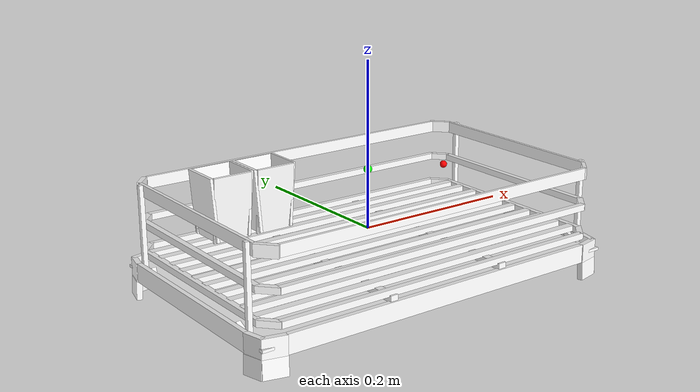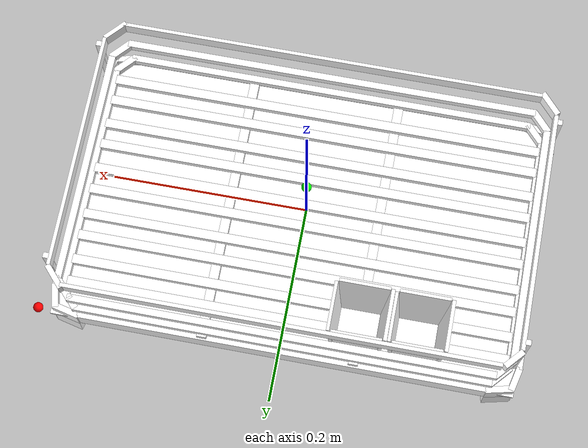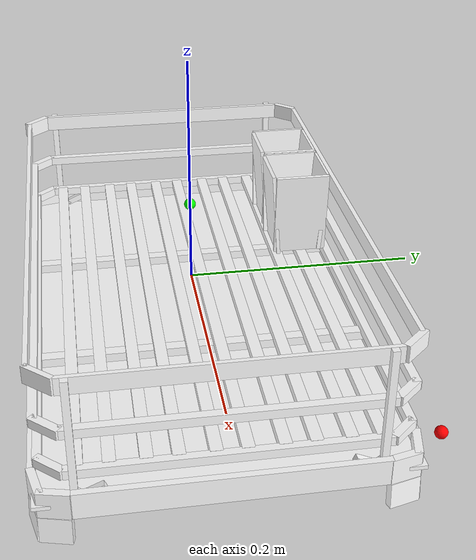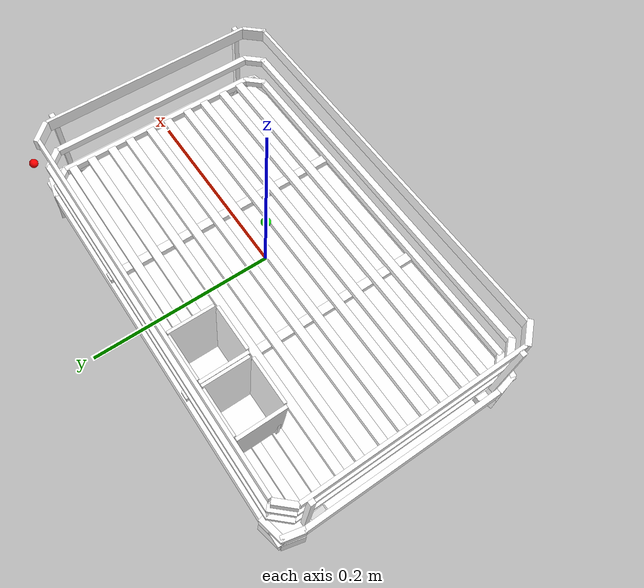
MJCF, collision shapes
<?xml version='1.0' encoding='utf-8'?>
<mujoco model="model">
  <option timestep="0.002" gravity="0.0 0.0 -9.81" />
  <compiler angle="radian" />
  <asset>
    <mesh file="visual/DishRack001.obj" name="DishRack001_vis" />
    <texture file="visual/T_BC001.png" name="DishRack001_material" type="2d" />
    <material name="DishRack001_material" rgba="1 1 1 1.0" texture="DishRack001_material" shininess="0.0" specular="0.3103448502657381" />
  </asset>
  <default>
    <default class="visual">
      <geom conaffinity="0" contype="0" group="1" type="mesh" />
    </default>
    <default class="collision">
      <geom group="0" rgba="1 1 1 0.25" density="1.0" solref="0.004 1" solimp="0.998 0.998 0.001" />
    </default>
    <default class="spawn">
      <geom group="0" rgba="1 1 1 0.5" contype="0" conaffinity="0" />
      <site group="0" rgba="1 1 1 0.5" />
    </default>
    <default class="region">
      <geom group="1" conaffinity="0" contype="0" rgba="0 1 0 0" mass="0" />
    </default>
  </default>
  <worldbody>
    <body>
      <body name="object">
        <geom mesh="DishRack001_vis" type="mesh" solimp="0.998 0.998 0.001" solref="0.001 1" friction="0.95 0.3 0.1" class="visual" material="DishRack001_material" />
        <geom type="box" pos="0.00078065 0.00002598 -0.03666005" size="0.23860862851142883 0.14481741189956665 0.0016388616058975458" quat="1.0 0.0 0.0 0.0" class="collision" />
        <geom type="box" pos="0.00036155 -0.14414408 -0.03586867" size="0.20973120629787445 0.0028738128021359444 0.011258003301918507" quat="1.0 0.0 0.0 0.0" class="collision" />
        <geom type="box" pos="-0.22248497 -0.14168655 -0.03586867" size="0.014151226729154587 0.003268755506724119 0.011258003301918507" quat="0.9936599135398865 0.0 -0.0 -0.11242754757404327" class="collision" />
        <geom type="box" pos="-0.23680636 -0.12837830 -0.03586867" size="0.012441178783774376 0.003268755739554763 0.011258003301918507" quat="0.7828682065010071 0.0 -0.0 -0.622187614440918" class="collision" />
        <geom type="box" pos="-0.23789424 -0.12863595 -0.05816778" size="0.012441177852451801 0.003268755506724119 0.011258004233241081" quat="0.7869249582290649 -0.02062370628118515 0.011115825735032558 -0.6166037917137146" class="collision" />
        <geom type="box" pos="-0.22260144 -0.14219261 -0.05815336" size="0.014151226729154587 0.003268755506724119 0.011258002370595932" quat="0.9932156205177307 -0.02800566516816616 0.003979992587119341 -0.1127941682934761" class="collision" />
        <geom type="box" pos="0.22245515 -0.14219261 -0.05815336" size="0.014151226729154587 0.003268755506724119 0.011258002370595932" quat="0.9932156205177307 -0.02800566330552101 -0.003979993052780628 0.1127941757440567" class="collision" />
        <geom type="box" pos="0.23774796 -0.12863595 -0.05816778" size="0.012441177852451801 0.003268755506724119 0.011258004233241081" quat="0.7869249582290649 -0.02062371000647545 -0.011115830391645432 0.6166037917137146" class="collision" />
        <geom type="box" pos="0.23666006 -0.12837830 -0.03586867" size="0.012441178783774376 0.003268755739554763 0.011258003301918507" quat="0.7828682065010071 0.0 0.0 0.622187614440918" class="collision" />
        <geom type="box" pos="0.22233867 -0.14168655 -0.03586867" size="0.014151226729154587 0.003268755506724119 0.011258003301918507" quat="0.9936599135398865 0.0 0.0 0.11242754757404327" class="collision" />
        <geom type="box" pos="0.22233867 0.14122807 -0.03586867" size="0.014151226729154587 0.003268755506724119 0.011258003301918507" quat="0.9936599135398865 0.0 -0.0 -0.11242754757404327" class="collision" />
        <geom type="box" pos="0.23666006 0.12791982 -0.03586867" size="0.012441178783774376 0.003268755739554763 0.011258003301918507" quat="0.7828682065010071 0.0 -0.0 -0.622187614440918" class="collision" />
        <geom type="box" pos="0.23774796 0.12817748 -0.05816778" size="0.012441177852451801 0.003268755506724119 0.011258004233241081" quat="0.7869249582290649 0.020623711869120598 -0.011115830391645432 -0.6166037917137146" class="collision" />
        <geom type="box" pos="0.22245515 0.14173414 -0.05815336" size="0.014151226729154587 0.003268755506724119 0.011258002370595932" quat="0.9932156205177307 0.02800566330552101 -0.0039799935184419155 -0.1127941757440567" class="collision" />
        <geom type="box" pos="-0.22260144 0.14173414 -0.05815336" size="0.014151226729154587 0.003268755506724119 0.011258002370595932" quat="0.9932156205177307 0.028005676344037056 0.0039799949154257774 0.1127941757440567" class="collision" />
        <geom type="box" pos="-0.23789424 0.12817748 -0.05816778" size="0.012441177852451801 0.003268755506724119 0.011258004233241081" quat="0.7869249582290649 0.02062370441854 0.01111582387238741 0.6166037917137146" class="collision" />
        <geom type="box" pos="-0.23680636 0.12791982 -0.03586867" size="0.012441178783774376 0.003268755739554763 0.011258003301918507" quat="0.7828682065010071 0.0 0.0 0.622187614440918" class="collision" />
        <geom type="box" pos="-0.22248497 0.14122807 -0.03586867" size="0.014151226729154587 0.003268755506724119 0.011258003301918507" quat="0.9936599135398865 0.0 0.0 0.11242754757404327" class="collision" />
        <geom type="box" pos="0.00036155 0.14360448 -0.03586867" size="0.20973120629787445 0.0029549510218203068 0.011258003301918507" quat="1.0 0.0 0.0 0.0" class="collision" />
        <geom type="box" pos="0.23920391 0.00058542 -0.03586867" size="0.002873828634619713 0.11705286800861359 0.011258003301918507" quat="1.0 0.0 0.0 0.0" class="collision" />
        <geom type="box" pos="-0.23919996 0.00058542 -0.03586867" size="0.002873828634619713 0.11705286800861359 0.011258003301918507" quat="1.0 0.0 0.0 0.0" class="collision" />
        <geom type="box" pos="-0.07405679 0.00002598 -0.02188594" size="0.004906593356281519 0.14481741189956665 0.003832004265859723" quat="1.0 0.0 0.0 0.0" class="collision" />
        <geom type="box" pos="0.08077608 0.00002598 -0.02188594" size="0.004906593356281519 0.14481741189956665 0.003832004265859723" quat="1.0 0.0 0.0 0.0" class="collision" />
        <geom type="box" pos="-0.00018352 -0.11131924 -0.01552283" size="0.22577700018882751 0.004906604066491127 0.0034510313998907804" quat="1.0 0.0 0.0 0.0" class="collision" />
        <geom type="box" pos="-0.00018352 -0.08792176 -0.01552283" size="0.22577700018882751 0.004906604066491127 0.0034510313998907804" quat="1.0 0.0 0.0 0.0" class="collision" />
        <geom type="box" pos="-0.00018352 -0.03780349 -0.01552283" size="0.22577700018882751 0.004906604066491127 0.0034510313998907804" quat="1.0 0.0 0.0 0.0" class="collision" />
        <geom type="box" pos="-0.00018352 -0.06120096 -0.01552283" size="0.22577700018882751 0.004906604066491127 0.0034510313998907804" quat="1.0 0.0 0.0 0.0" class="collision" />
        <geom type="box" pos="-0.00018352 -0.01076036 -0.01552283" size="0.22577700018882751 0.004906604066491127 0.0034510313998907804" quat="1.0 0.0 0.0 0.0" class="collision" />
        <geom type="box" pos="-0.00018352 0.01263712 -0.01552283" size="0.22577700018882751 0.004906604066491127 0.0034510313998907804" quat="1.0 0.0 0.0 0.0" class="collision" />
        <geom type="box" pos="-0.00018352 0.06343483 -0.01552283" size="0.22577700018882751 0.004906604066491127 0.0034510313998907804" quat="1.0 0.0 0.0 0.0" class="collision" />
        <geom type="box" pos="-0.00018352 0.04003736 -0.01552283" size="0.22577700018882751 0.004906604066491127 0.0034510313998907804" quat="1.0 0.0 0.0 0.0" class="collision" />
        <geom type="box" pos="-0.00018352 0.08968992 -0.01552283" size="0.22577700018882751 0.004906604066491127 0.0034510313998907804" quat="1.0 0.0 0.0 0.0" class="collision" />
        <geom type="box" pos="-0.00018352 0.11308739 -0.01552283" size="0.22577700018882751 0.004906604066491127 0.0034510313998907804" quat="1.0 0.0 0.0 0.0" class="collision" />
        <geom type="box" pos="0.22745553 -0.00002077 -0.01598933" size="0.003535619005560875 0.12121529877185822 0.003832004265859723" quat="1.0 0.0 0.0 0.0" class="collision" />
        <geom type="box" pos="0.21993532 0.13023233 -0.01598933" size="0.003535619005560875 0.013264778070151806 0.003832004265859723" quat="0.9337574243545532 0.0 0.0 0.3579064905643463" class="collision" />
        <geom type="box" pos="0.00060555 0.13882867 -0.01598933" size="0.21360377967357635 0.0035356348380446434 0.003832004265859723" quat="1.0 0.0 0.0 0.0" class="collision" />
        <geom type="box" pos="-0.21981471 0.13023234 -0.01598933" size="0.003535619005560875 0.013264778070151806 0.003832004265859723" quat="0.9337574243545532 0.0 -0.0 -0.3579064905643463" class="collision" />
        <geom type="box" pos="-0.22733492 -0.00002077 -0.01598933" size="0.003535619005560875 0.12121529877185822 0.003832004265859723" quat="1.0 0.0 0.0 0.0" class="collision" />
        <geom type="box" pos="-0.21981471 -0.13014209 -0.01598933" size="0.003535619005560875 0.013264778070151806 0.003832004265859723" quat="0.9337574243545532 0.0 0.0 0.3579064905643463" class="collision" />
        <geom type="box" pos="0.00060555 -0.13873842 -0.01598933" size="0.21360377967357635 0.0035356348380446434 0.003832004265859723" quat="1.0 0.0 0.0 0.0" class="collision" />
        <geom type="box" pos="0.21993531 -0.13014209 -0.01598933" size="0.003535619005560875 0.013264778070151806 0.003832004265859723" quat="0.9337574243545532 0.0 -0.0 -0.3579064905643463" class="collision" />
        <geom type="box" pos="0.21993531 -0.13014209 0.02021525" size="0.003535619005560875 0.013264778070151806 0.003832004265859723" quat="0.9337574243545532 0.0 -0.0 -0.3579064905643463" class="collision" />
        <geom type="box" pos="0.00060555 -0.13873842 0.02021525" size="0.21360377967357635 0.0035356348380446434 0.003832004265859723" quat="1.0 0.0 0.0 0.0" class="collision" />
        <geom type="box" pos="-0.21981471 -0.13014209 0.02021525" size="0.003535619005560875 0.013264778070151806 0.003832004265859723" quat="0.9337574243545532 0.0 0.0 0.3579064905643463" class="collision" />
        <geom type="box" pos="-0.22733492 -0.00002077 0.02021525" size="0.003535619005560875 0.12121529877185822 0.003832004265859723" quat="1.0 0.0 0.0 0.0" class="collision" />
        <geom type="box" pos="-0.21981471 0.13023234 0.02021525" size="0.003535619005560875 0.013264778070151806 0.003832004265859723" quat="0.9337574243545532 0.0 -0.0 -0.3579064905643463" class="collision" />
        <geom type="box" pos="0.00060555 0.13882867 0.02021525" size="0.21360377967357635 0.0035356348380446434 0.003832004265859723" quat="1.0 0.0 0.0 0.0" class="collision" />
        <geom type="box" pos="0.21993532 0.13023233 0.02021525" size="0.003535619005560875 0.013264778070151806 0.003832004265859723" quat="0.9337574243545532 0.0 0.0 0.3579064905643463" class="collision" />
        <geom type="box" pos="0.22745553 -0.00002077 0.02021525" size="0.003535619005560875 0.12121529877185822 0.003832004265859723" quat="1.0 0.0 0.0 0.0" class="collision" />
        <geom type="box" pos="0.22951985 -0.00002077 0.06166363" size="0.001791532849892974 0.12121529877185822 0.0070558651350438595" quat="1.0 0.0 0.0 0.0" class="collision" />
        <geom type="box" pos="0.22120174 0.13137036 0.06166363" size="0.002772232750430703 0.013264778070151806 0.0070558651350438595" quat="0.9337574243545532 0.0 0.0 0.3579064905643463" class="collision" />
        <geom type="box" pos="0.00060555 0.13831366 0.06166363" size="0.21360377967357635 0.0019575085025280714 0.0070558651350438595" quat="1.0 0.0 0.0 0.0" class="collision" />
        <geom type="box" pos="-0.22274693 0.13046825 0.06166363" size="0.0029023527167737484 0.011480365879833698 0.0070558651350438595" quat="0.9337574243545532 0.0 -0.0 -0.3579064905643463" class="collision" />
        <geom type="box" pos="-0.22952782 -0.00002077 0.06166363" size="0.0020486032590270042 0.12121529877185822 0.0070558651350438595" quat="1.0 0.0 0.0 0.0" class="collision" />
        <geom type="box" pos="-0.22186454 -0.13198409 0.06166363" size="0.0030079721473157406 0.013264778070151806 0.0070558651350438595" quat="0.9337574243545532 0.0 0.0 0.3579064905643463" class="collision" />
        <geom type="box" pos="0.00060555 -0.13927036 0.06166363" size="0.21360377967357635 0.0017952282214537263 0.0070558651350438595" quat="1.0 0.0 0.0 0.0" class="collision" />
        <geom type="box" pos="0.22092363 -0.13103020 0.06166363" size="0.002206895500421524 0.013264778070151806 0.0070558651350438595" quat="0.9337574243545532 0.0 -0.0 -0.3579064905643463" class="collision" />
        <geom type="box" pos="-0.07314801 0.11006149 -0.00888256" size="0.022383389994502068 0.02015003375709057 0.001564762438647449" quat="1.0 0.0 0.0 0.0" class="collision" />
        <geom type="box" pos="-0.09713414 0.11014594 0.02919597" size="0.0017983451252803206 0.0255619827657938 0.03964803367853165" quat="0.9992583990097046 3.028943497267075e-16 -0.038505423814058304 5.173545591929951e-09" class="collision" />
        <geom type="box" pos="-0.04832990 0.11097141 0.02911933" size="0.0016491608694195747 0.02473651058971882 0.039681702852249146" quat="0.9992583990097046 -3.831574183332917e-16 0.0385054312646389 5.173545591929951e-09" class="collision" />
        <geom type="box" pos="-0.07267418 0.08741566 0.02811576" size="0.0016491608694195747 0.024875830858945847 0.0405731238424778" quat="0.7065824270248413 0.02722744457423687 -0.02722744829952717 0.7065823674201965" class="collision" />
        <geom type="box" pos="-0.07284768 0.13272107 0.02909262" size="0.0018638471374288201 0.02470233291387558 0.03945987671613693" quat="0.7065824270248413 -0.02722744457423687 -0.02722744829952717 -0.7065823674201965" class="collision" />
        <geom type="box" pos="-0.13146536 0.13272107 0.02909262" size="0.0018638471374288201 0.02470233291387558 0.03945987671613693" quat="0.7065824270248413 -0.02722744457423687 -0.02722744829952717 -0.7065823674201965" class="collision" />
        <geom type="box" pos="-0.13129186 0.08741566 0.02811576" size="0.0016491608694195747 0.024875830858945847 0.0405731238424778" quat="0.7065824270248413 0.02722744457423687 -0.02722744829952717 0.7065823674201965" class="collision" />
        <geom type="box" pos="-0.10694758 0.11097141 0.02911933" size="0.0016491608694195747 0.02473651058971882 0.039681702852249146" quat="0.9992583990097046 -3.831574183332917e-16 0.0385054312646389 5.173545591929951e-09" class="collision" />
        <geom type="box" pos="-0.15575182 0.11014594 0.02919597" size="0.0017983451252803206 0.0255619827657938 0.03964803367853165" quat="0.9992583990097046 3.028943497267075e-16 -0.038505423814058304 5.173545591929951e-09" class="collision" />
        <geom type="box" pos="-0.13176569 0.11006149 -0.00888256" size="0.022383389994502068 0.02015003375709057 0.001564762438647449" quat="1.0 0.0 0.0 0.0" class="collision" />
        <geom type="box" pos="-0.23353789 0.11245712 0.01648141" size="0.002733364701271057 0.002788302954286337 0.05223808437585831" quat="1.0 0.0 0.0 0.0" class="collision" />
        <geom type="box" pos="-0.23353789 0.10889501 -0.03181310" size="0.002733364701271057 0.002788303419947624 0.005799939855933189" quat="0.44025325775146484 0.8978736400604248 1.99367984444927e-16 -7.110101946370132e-24" class="collision" />
        <geom type="box" pos="-0.23353789 0.09817072 -0.02973720" size="0.002733364701271057 0.002848921110853553 0.008928750641644001" quat="0.8395293354988098 0.5433143973350525 1.206399910016738e-16 -7.55870426620307e-24" class="collision" />
        <geom type="box" pos="-0.23353789 -0.09954890 -0.02973720" size="0.002733364701271057 0.002848921110853553 0.008928750641644001" quat="0.8395293354988098 -0.5433143973350525 1.206400042365636e-16 5.598518234221838e-24" class="collision" />
        <geom type="box" pos="-0.23353789 -0.11027318 -0.03181310" size="0.002733364701271057 0.0027883031871169806 0.005799939390271902" quat="0.4402533769607544 -0.89787358045578 1.993680241495964e-16 -4.543308305114267e-24" class="collision" />
        <geom type="box" pos="-0.23353789 -0.11383530 0.01648141" size="0.002733364701271057 0.002788302954286337 0.05223808437585831" quat="1.0 0.0 0.0 0.0" class="collision" />
        <geom type="box" pos="0.23374752 -0.11383530 0.01648141" size="0.002733364701271057 0.002788302954286337 0.05223808437585831" quat="1.0 0.0 0.0 0.0" class="collision" />
        <geom type="box" pos="0.23374752 -0.11027318 -0.03181310" size="0.002733364701271057 0.0027883031871169806 0.005799939390271902" quat="0.4402533769607544 -0.89787358045578 1.993680241495964e-16 -4.543308305114267e-24" class="collision" />
        <geom type="box" pos="0.23374752 -0.09954890 -0.02973720" size="0.002733364701271057 0.002848921110853553 0.008928750641644001" quat="0.8395293354988098 -0.5433143973350525 1.206400042365636e-16 5.598518234221838e-24" class="collision" />
        <geom type="box" pos="0.23374752 0.09817072 -0.02973720" size="0.002733364701271057 0.002848921110853553 0.008928750641644001" quat="0.8395293354988098 0.5433143973350525 1.206399910016738e-16 -7.55870426620307e-24" class="collision" />
        <geom type="box" pos="0.23374752 0.10889501 -0.03181310" size="0.002733364701271057 0.002788303419947624 0.005799939855933189" quat="0.44025325775146484 0.8978736400604248 1.99367984444927e-16 -7.110101946370132e-24" class="collision" />
        <geom type="box" pos="0.23374752 0.11245712 0.01648141" size="0.002733364701271057 0.002788302954286337 0.05223808437585831" quat="1.0 0.0 0.0 0.0" class="collision" />
        <geom class="region" name="reg_int_0" type="box" pos="-0.00030341000000000395 -0.023198384999999995 0.07645318000000001" size="0.21476619 0.104256765 0.08904465" />
        </body>
      <geom size="0.24436883 0.14894862 0.07214699" pos="0.0 -0.0 0.0" name="reg_bbox" class="region" type="box" quat="1.0 0.0 0.0 0.0" />
      <site rgba="1 0 0 1" size="0.005" pos="0.24436883 0.14894862 0.0" name="horizontal_radius_site" />
      <site rgba="0 1 0 1" size="0.005" pos="0.0 -0.0 0.07214699" name="top_site" />
      <site rgba="0 0 1 1" size="0.005" pos="0.0 -0.0 -0.07214699" name="bottom_site" />
    </body>
  </worldbody>
  <actuator />
</mujoco>
